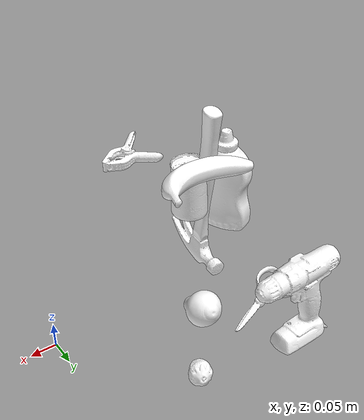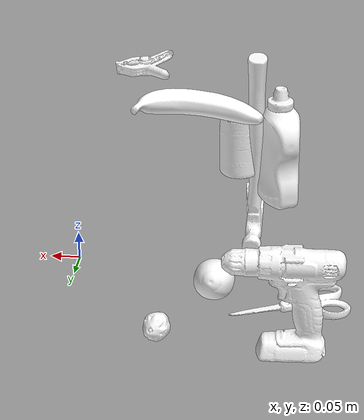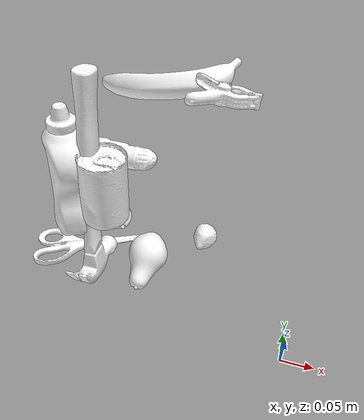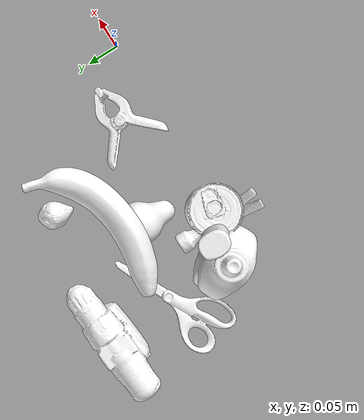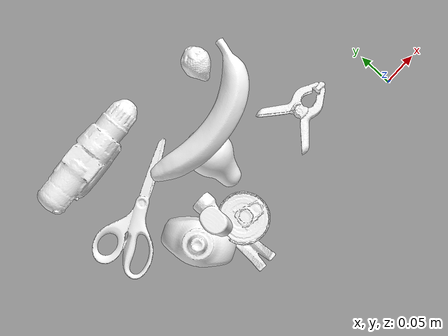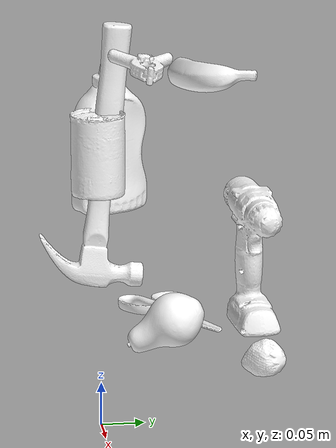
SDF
<sdf version="1.6">
 <world name="default">
  <gravity>0 0 -9.8</gravity>
  <model name="YcbMustardBottle">
   <pose>-0.34615 0.03794 0.25 0 0 1.9390639</pose>
   <link name="baselink">
    <contact>
     <lateral_friction>0.8</lateral_friction>
     <spinning_friction>0.001</spinning_friction>
     <rolling_friction>0.001</rolling_friction>
     <contact_cfm>0.0</contact_cfm>
     <contact_erp>1.0</contact_erp>
    </contact>
    <inertial>
     <pose>0.005 -0.005 -0.015 0 0 0.1</pose>
     <mass>0.603</mass>
     <inertia><ixx>1e-3</ixx><ixy>0</ixy><ixz>0</ixz><iyy>1e-3</iyy><iyz>0</iyz><izz>1e-3</izz></inertia>
    </inertial>
    <visual name="visual">
     <geometry>
      <mesh><scale>1 1 1</scale><uri>../ycb_objects/YcbMustardBottle/textured_simple_reoriented.obj</uri></mesh>
     </geometry>
     <material>
      <ambient>1 1 1 1</ambient>
      <diffuse>1.00000 1.00000 1.000000 1</diffuse>
      <specular>.5 .5 .5 1</specular>
      <emissive>0 0 0 0</emissive>
     </material>
    </visual>
    <collision name="collision">
     <geometry>
      <mesh><scale>1 1 1</scale><uri>../ycb_objects/YcbMustardBottle/collision_vhacd.obj</uri></mesh>
     </geometry>
    </collision>
   </link>
  </model>
  <model name="YcbTomatoSoupCan">
   <pose>-0.2861526 0.02094 0.26 0 0 -0.5236056</pose>
   <link name="baselink">
    <contact>
     <lateral_friction>0.6</lateral_friction>
     <rolling_friction>0.001</rolling_friction>
     <spinning_friction>0.001</spinning_friction>
     <contact_cfm>0.0</contact_cfm>
     <contact_erp>1.0</contact_erp>
    </contact>
    <inertial>
     <pose>0 0.0 -0.02 0.0 0.0 0.0</pose>
     <mass>0.349</mass>
     <inertia><ixx>1e-3</ixx><ixy>0</ixy><ixz>0</ixz><iyy>1e-3</iyy><iyz>0</iyz><izz>1e-3</izz></inertia>
    </inertial>
    <visual name="visual">
     <geometry>
      <mesh><scale>1 1 1</scale><uri>../ycb_objects/YcbTomatoSoupCan/textured_simple_reoriented.obj</uri></mesh>
     </geometry>
     <material>
      <ambient>1 1 1 1</ambient>
      <diffuse>1.00000 1.00000 1.000000 1</diffuse>
      <specular>.5 .5 .5 1</specular>
      <emissive>0 0 0 0</emissive>
     </material>
    </visual>
    <collision name="collision">
     <geometry>
      <mesh><scale>1 1 1</scale><uri>../ycb_objects/YcbTomatoSoupCan/collision_vhacd.obj</uri></mesh>
     </geometry>
    </collision>
   </link>
  </model>
  <model name="YcbBanana">
   <pose>-0.19615 0.13794 0.35 0 0.14 -2.9845</pose>
   <link name="baselink">
    <contact>
     <lateral_friction>0.3</lateral_friction>
     <rolling_friction>0.001</rolling_friction>
     <contact_cfm>0.0</contact_cfm>
     <contact_erp>1.0</contact_erp>
    </contact>
    <inertial>
     <pose>0.01 0.0 0.01 0.0 0.0 0.0</pose>
     <mass>0.066</mass>
     <inertia><ixx>1e-3</ixx><ixy>0</ixy><ixz>0</ixz><iyy>1e-3</iyy><iyz>0</iyz><izz>1e-3</izz></inertia>
    </inertial>
    <visual name="visual">
     <geometry>
      <mesh><scale>1 1 1</scale><uri>../ycb_objects/YcbBanana/textured_simple_reoriented.obj</uri></mesh>
     </geometry>
     <material>
      <ambient>1 1 1 1</ambient>
      <diffuse>1.00000 1.00000 1.000000 1</diffuse>
      <specular>.5 .5 .5 1</specular>
      <emissive>0 0 0 0</emissive>
     </material>
    </visual>
    <collision name="collision">
     <geometry><mesh><scale>1 1 1</scale><uri>../ycb_objects/YcbBanana/collision_vhacd.obj</uri></mesh></geometry>
    </collision>
   </link>
  </model>
  <model name="YcbScissors">
   <pose>-0.37456 0.13899 -0.08 0 0 0.5236056</pose>
   <link name="baselink">
    <contact>
     <lateral_friction>0.6</lateral_friction>
     <rolling_friction>0.001</rolling_friction>
     <spinning_friction>0.001</spinning_friction>
     <contact_cfm>0.0</contact_cfm>
     <contact_erp>1.0</contact_erp>
    </contact>
    <inertial>
     <pose>0.0 -0.005 0.1 0.0 0.0 0.0</pose>
     <mass>0.082</mass>
     <inertia><ixx>1e-3</ixx><ixy>0</ixy><ixz>0</ixz><iyy>1e-3</iyy><iyz>0</iyz><izz>1e-3</izz></inertia>
    </inertial>
    <visual name="visual">
     <geometry>
      <mesh><scale>1 1 1</scale><uri>../ycb_objects/YcbScissors/textured_simple_reoriented.obj</uri></mesh>
     </geometry>
     <material>
      <ambient>1 1 1 1</ambient>
      <diffuse>1.00000 1.00000 1.000000 1</diffuse>
      <specular>.5 .5 .5 1</specular>
      <emissive>0 0 0 0</emissive>
     </material>
    </visual>
    <collision name="collision">
     <geometry>
      <mesh><scale>1 1 1</scale><uri>../ycb_objects/YcbScissors/collision_vhacd.obj</uri></mesh>
     </geometry>
    </collision>
   </link>
  </model>
  <model name="YcbStrawberry">
   <pose>-0.1661526 0.21094 0. 0 0 -0.5236056</pose>
   <link name="baselink">
    <contact>
     <lateral_friction>0.5</lateral_friction>
     <rolling_friction>0.001</rolling_friction>
     <spinning_friction>0.001</spinning_friction>
     <contact_cfm>0.0</contact_cfm>
     <contact_erp>1.0</contact_erp>
    </contact>
    <inertial>
     <pose>-0.005 0.005 0.02 0.0 0.0 0.0</pose>
     <mass>0.018</mass>
     <inertia><ixx>1e-3</ixx><ixy>0</ixy><ixz>0</ixz><iyy>1e-3</iyy><iyz>0</iyz><izz>1e-3</izz></inertia>
    </inertial>
    <visual name="visual">
     <geometry>
      <mesh><scale>1 1 1</scale><uri>../ycb_objects/YcbStrawberry/textured_reoriented.obj</uri></mesh>
     </geometry>
     <material>
      <ambient>1 1 1 1</ambient>
      <diffuse>1.00000 1.00000 1.000000 1</diffuse>
      <specular>.5 .5 .5 1</specular>
      <emissive>0 0 0 0</emissive>
     </material>
    </visual>
    <collision name="collision">
     <geometry>
      <mesh><scale>1 1 1</scale><uri>../ycb_objects/YcbStrawberry/collision_vhacd.obj</uri></mesh>
     </geometry>
    </collision>
   </link>
  </model>
  <model name="YcbPear">
   <pose>-0.2461526 0.12794 0.0 0.5355226 0 0</pose>
   <link name="baselink">
    <contact>
     <lateral_friction>0.6</lateral_friction>
     <rolling_friction>0.001</rolling_friction>
     <spinning_friction>0.001</spinning_friction>
     <contact_cfm>0.0</contact_cfm>
     <contact_erp>1.0</contact_erp>
    </contact>
    <inertial>
     <pose>0 0.005 0.04 0.0 0.0 0.0</pose>
     <mass>0.049</mass>
     <inertia><ixx>1e-3</ixx><ixy>0</ixy><ixz>0</ixz><iyy>1e-3</iyy><iyz>0</iyz><izz>1e-3</izz></inertia>
    </inertial>
    <visual name="visual">
     <geometry>
      <mesh><scale>1 1 1</scale><uri>../ycb_objects/YcbPear/textured_reoriented.obj</uri></mesh>
     </geometry>
     <material>
      <ambient>1 1 1 1</ambient>
      <diffuse>1.00000 1.00000 1.000000 1</diffuse>
      <specular>.5 .5 .5 1</specular>
      <emissive>0 0 0 0</emissive>
     </material>
    </visual>
    <collision name="collision">
     <geometry><mesh><scale>1 1 1</scale><uri>../ycb_objects/YcbPear/collision_vhacd.obj</uri></mesh></geometry>
    </collision>
   </link>
  </model>
  <model name="YcbPowerDrill">
   <pose>-0.38456 0.21899 0. 0 0 -0.5236056</pose>
   <link name="baselink">
    <contact>
     <lateral_friction>0.9</lateral_friction>
     <rolling_friction>0.001</rolling_friction>
     <spinning_friction>0.001</spinning_friction>
     <contact_cfm>0.0</contact_cfm>
     <contact_erp>1.0</contact_erp>
    </contact>
    <inertial>
     <pose>-0.005 0.01 0.06 0 0 0.6</pose>
     <mass>0.895</mass>
     <inertia><ixx>1e-3</ixx><ixy>0</ixy><ixz>0</ixz><iyy>1e-3</iyy><iyz>0</iyz><izz>1e-3</izz></inertia>
    </inertial>
    <visual name="visual">
     <geometry>
      <mesh><scale>1 1 1</scale><uri>../ycb_objects/YcbPowerDrill/textured_simple_reoriented.obj</uri></mesh>
     </geometry>
     <material>
      <ambient>1 1 1 1</ambient>
      <diffuse>1.00000 1.00000 1.000000 1</diffuse>
      <specular>.5 .5 .5 1</specular>
      <emissive>0 0 0 0</emissive>
     </material>
    </visual>
    <collision name="collision">
     <geometry>
      <mesh><scale>1 1 1</scale><uri>../ycb_objects/YcbPowerDrill/collision_vhacd.obj</uri></mesh>
     </geometry>
    </collision>
   </link>
  </model>
  <model name="YcbMediumClamp">
   <pose>-0.13615 0.05794 0.35 0 0 0</pose>
   <link name="baselink">
    <contact>
     <lateral_friction>0.6</lateral_friction>
     <rolling_friction>0.001</rolling_friction>
     <spinning_friction>0.001</spinning_friction>
     <contact_cfm>0.0</contact_cfm>
     <contact_erp>1.0</contact_erp>
    </contact>
    <inertial>
     <pose>0.02 0.009 0.04 -0.1 0 0.0</pose>
     <mass>0.059</mass>
     <inertia><ixx>1e-3</ixx><ixy>0</ixy><ixz>0</ixz><iyy>1e-3</iyy><iyz>0</iyz><izz>1e-3</izz></inertia>
    </inertial>
    <visual name="visual">
     <geometry>
      <mesh><scale>1 1 1</scale><uri>../ycb_objects/YcbMediumClamp/textured_reoriented.obj</uri></mesh>
     </geometry>
     <material>
      <ambient>1 1 1 1</ambient>
      <diffuse>1.00000 1.00000 1.000000 1</diffuse>
      <specular>.5 .5 .5 1</specular>
      <emissive>0 0 0 0</emissive>
     </material>
    </visual>
    <collision name="collision">
     <geometry>
      <mesh><scale>1 1 1</scale><uri>../ycb_objects/YcbMediumClamp/collision_vhacd.obj</uri></mesh>
     </geometry>
    </collision>
   </link>
  </model>
  <model name="YcbHammer">
   <pose>-0.31615 0.01794 0.25 1.57 0 1.57</pose>
   <link name="baselink">
    <contact>
     <lateral_friction>0.3</lateral_friction>
     <rolling_friction>0.001</rolling_friction>
     <contact_cfm>0.0</contact_cfm>
     <contact_erp>1.0</contact_erp>
    </contact>
    <inertial>
     <pose>0.02 -0.01 0.01 0.0 0.0 0.0</pose>
     <mass>0.665</mass>
     <inertia><ixx>1e-3</ixx><ixy>0</ixy><ixz>0</ixz><iyy>1e-3</iyy><iyz>0</iyz><izz>1e-3</izz></inertia>
    </inertial>
    <visual name="visual">
     <geometry>
      <mesh><scale>1 1 1</scale><uri>../ycb_objects/YcbHammer/textured_reoriented.obj</uri></mesh>
     </geometry>
     <material>
      <ambient>1 1 1 1</ambient>
      <diffuse>1.00000 1.00000 1.000000 1</diffuse>
      <specular>.5 .5 .5 1</specular>
      <emissive>0 0 0 0</emissive>
     </material>
    </visual>
    <collision name="collision">
     <geometry><mesh><scale>1 1 1</scale><uri>../ycb_objects/YcbHammer/collision_vhacd.obj</uri></mesh></geometry>
    </collision>
   </link>
  </model>
 </world>
</sdf>
